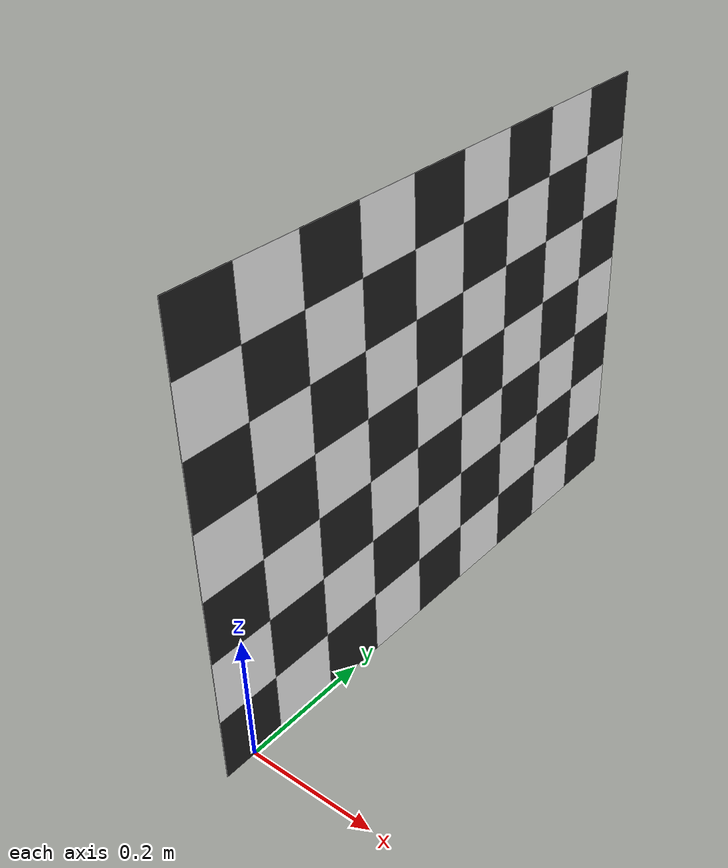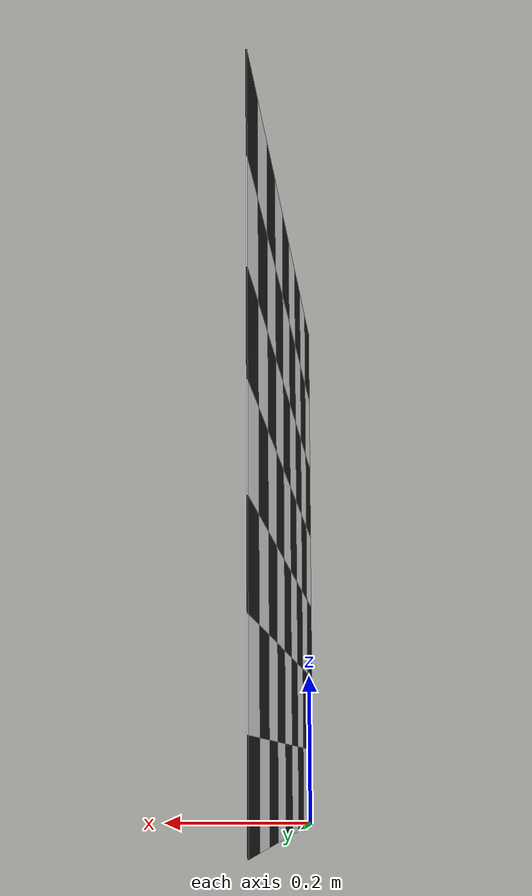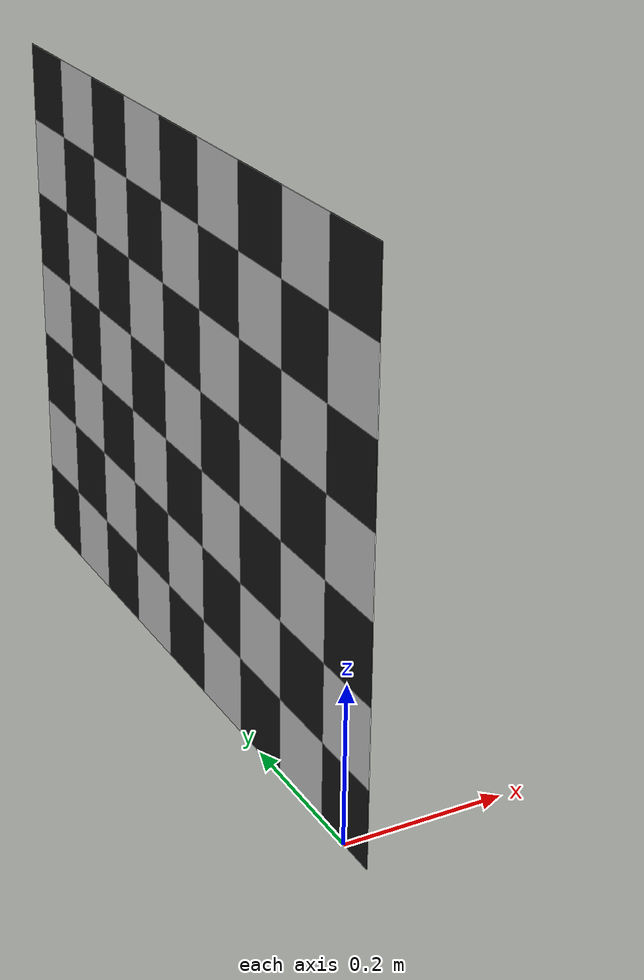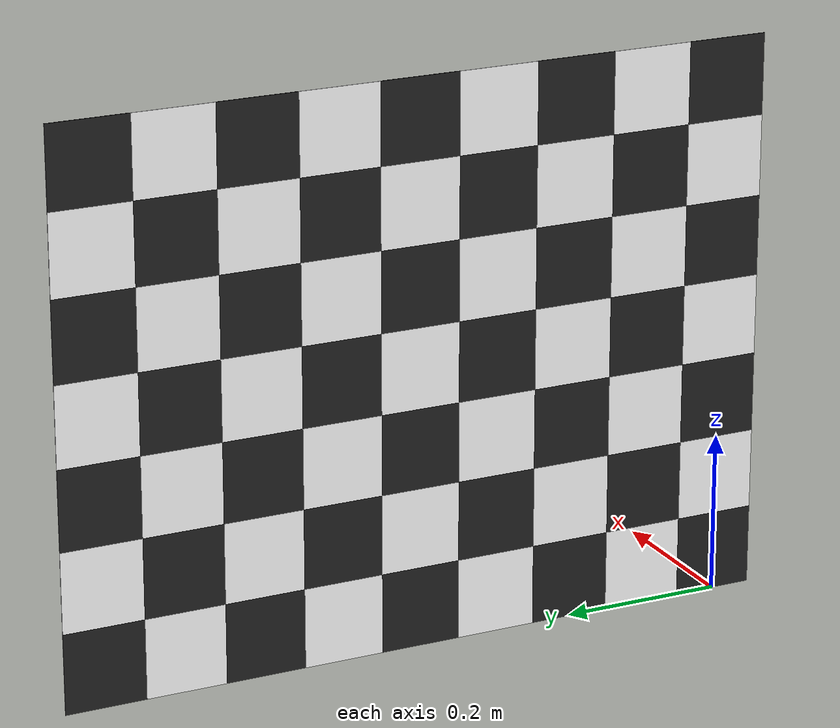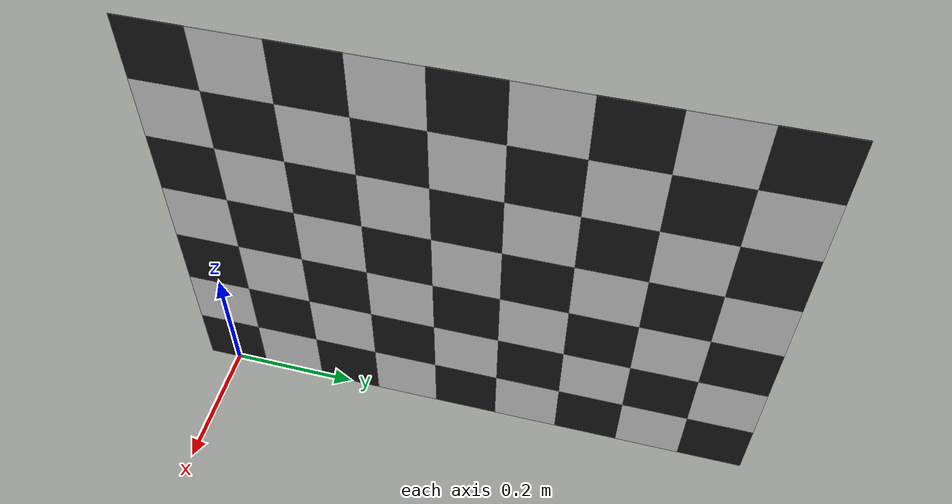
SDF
<sdf version='1.6'>
	<model name="callibration_pattern">
		<pose>0 0 0.05 0 0 0</pose>
		<link name="link_1">
			<kinematic>1</kinematic>
			<gravity>0</gravity>
			<inertial>
				<mass>0.001</mass>
			</inertial>
			<collision name="collision">
				<geometry>
					<box>
						<size>0.001 0.1 0.1</size>
					</box>
				</geometry>
			</collision>
			<visual name="visual">
				<geometry>
					<box>
						<size>0.001 0.1 0.1</size>
					</box>
				</geometry>
				<material>
					<script>
						<name>Gazebo/Black</name>
						<uri>file://media/materials/scripts/gazebo.material</uri>
					</script>
				</material>
			</visual>
		</link>

		<link name="link_2">
			<kinematic>1</kinematic>
			<gravity>0</gravity>
			<pose>0 0.1 0 0 0 0</pose>
			<inertial>
				<mass>0.001</mass>
			</inertial>
			<collision name="collision">
				<geometry>
					<box>
						<size>0.001 0.1 0.1</size>
					</box>
				</geometry>
			</collision>
			<visual name="visual">
				<geometry>
					<box>
						<size>0.001 0.1 0.1</size>
					</box>
				</geometry>
				<material>
					<script>
						<name>Gazebo/White</name>
						<uri>file://media/materials/scripts/gazebo.material</uri>
					</script>
				</material>
			</visual>
		</link>

		<link name="link_3">
			<kinematic>1</kinematic>
			<gravity>0</gravity>
			<pose>0 0.2 0 0 0 0</pose>
			<inertial>
				<mass>0.001</mass>
			</inertial>
			<collision name="collision">
				<geometry>
					<box>
						<size>0.001 0.1 0.1</size>
					</box>
				</geometry>
			</collision>
			<visual name="visual">
				<geometry>
					<box>
						<size>0.001 0.1 0.1</size>
					</box>
				</geometry>
				<material>
					<script>
						<name>Gazebo/Black</name>
						<uri>file://media/materials/scripts/gazebo.material</uri>
					</script>
				</material>
			</visual>
		</link>

		<link name="link_4">
			<kinematic>1</kinematic>
			<gravity>0</gravity>
			<pose>0 0.3 0 0 0 0</pose>
			<inertial>
				<mass>0.001</mass>
			</inertial>
			<collision name="collision">
				<geometry>
					<box>
						<size>0.001 0.1 0.1</size>
					</box>
				</geometry>
			</collision>
			<visual name="visual">
				<geometry>
					<box>
						<size>0.001 0.1 0.1</size>
					</box>
				</geometry>
				<material>
					<script>
						<name>Gazebo/White</name>
						<uri>file://media/materials/scripts/gazebo.material</uri>
					</script>
				</material>
			</visual>
		</link>

		<link name="link_5">
			<kinematic>1</kinematic>
			<gravity>0</gravity>
			<pose>0 0.4 0 0 0 0</pose>
			<inertial>
				<mass>0.001</mass>
			</inertial>
			<collision name="collision">
				<geometry>
					<box>
						<size>0.001 0.1 0.1</size>
					</box>
				</geometry>
			</collision>
			<visual name="visual">
				<geometry>
					<box>
						<size>0.001 0.1 0.1</size>
					</box>
				</geometry>
				<material>
					<script>
						<name>Gazebo/Black</name>
						<uri>file://media/materials/scripts/gazebo.material</uri>
					</script>
				</material>
			</visual>
		</link>

		<link name="link_6">
			<kinematic>1</kinematic>
			<gravity>0</gravity>
			<pose>0 0.5 0 0 0 0</pose>
			<inertial>
				<mass>0.001</mass>
			</inertial>
			<collision name="collision">
				<geometry>
					<box>
						<size>0.001 0.1 0.1</size>
					</box>
				</geometry>
			</collision>
			<visual name="visual">
				<geometry>
					<box>
						<size>0.001 0.1 0.1</size>
					</box>
				</geometry>
				<material>
					<script>
						<name>Gazebo/White</name>
						<uri>file://media/materials/scripts/gazebo.material</uri>
					</script>
				</material>
			</visual>
		</link>

		<link name="link_7">
			<kinematic>1</kinematic>
			<gravity>0</gravity>
			<pose>0 0.6 0 0 0 0</pose>
			<inertial>
				<mass>0.001</mass>
			</inertial>
			<collision name="collision">
				<geometry>
					<box>
						<size>0.001 0.1 0.1</size>
					</box>
				</geometry>
			</collision>
			<visual name="visual">
				<geometry>
					<box>
						<size>0.001 0.1 0.1</size>
					</box>
				</geometry>
				<material>
					<script>
						<name>Gazebo/Black</name>
						<uri>file://media/materials/scripts/gazebo.material</uri>
					</script>
				</material>
			</visual>
		</link>

		<link name="link_8">
			<kinematic>1</kinematic>
			<gravity>0</gravity>
			<pose>0 0.7 0 0 0 0</pose>
			<inertial>
				<mass>0.001</mass>
			</inertial>
			<collision name="collision">
				<geometry>
					<box>
						<size>0.001 0.1 0.1</size>
					</box>
				</geometry>
			</collision>
			<visual name="visual">
				<geometry>
					<box>
						<size>0.001 0.1 0.1</size>
					</box>
				</geometry>
				<material>
					<script>
						<name>Gazebo/White</name>
						<uri>file://media/materials/scripts/gazebo.material</uri>
					</script>
				</material>
			</visual>
		</link>

		<link name="link_9">
			<kinematic>1</kinematic>
			<gravity>0</gravity>
			<pose>0 0.8 0 0 0 0</pose>
			<inertial>
				<mass>0.001</mass>
			</inertial>
			<collision name="collision">
				<geometry>
					<box>
						<size>0.001 0.1 0.1</size>
					</box>
				</geometry>
			</collision>
			<visual name="visual">
				<geometry>
					<box>
						<size>0.001 0.1 0.1</size>
					</box>
				</geometry>
				<material>
					<script>
						<name>Gazebo/Black</name>
						<uri>file://media/materials/scripts/gazebo.material</uri>
					</script>
				</material>
			</visual>
		</link>

		<link name="link_10">
			<kinematic>1</kinematic>
			<gravity>0</gravity>
			<pose>0 0 0.1 0 0 0</pose>
			<inertial>
				<mass>0.001</mass>
			</inertial>
			<collision name="collision">
				<geometry>
					<box>
						<size>0.001 0.1 0.1</size>
					</box>
				</geometry>
			</collision>
			<visual name="visual">
				<geometry>
					<box>
						<size>0.001 0.1 0.1</size>
					</box>
				</geometry>
				<material>
					<script>
						<name>Gazebo/White</name>
						<uri>file://media/materials/scripts/gazebo.material</uri>
					</script>
				</material>
			</visual>
		</link>

		<link name="link_11">
			<kinematic>1</kinematic>
			<gravity>0</gravity>
			<pose>0 0.1 0.1 0 0 0</pose>
			<inertial>
				<mass>0.001</mass>
			</inertial>
			<collision name="collision">
				<geometry>
					<box>
						<size>0.001 0.1 0.1</size>
					</box>
				</geometry>
			</collision>
			<visual name="visual">
				<geometry>
					<box>
						<size>0.001 0.1 0.1</size>
					</box>
				</geometry>
				<material>
					<script>
						<name>Gazebo/Black</name>
						<uri>file://media/materials/scripts/gazebo.material</uri>
					</script>
				</material>
			</visual>
		</link>

		<link name="link_12">
			<kinematic>1</kinematic>
			<gravity>0</gravity>
			<pose>0 0.2 0.1 0 0 0</pose>
			<inertial>
				<mass>0.001</mass>
			</inertial>
			<collision name="collision">
				<geometry>
					<box>
						<size>0.001 0.1 0.1</size>
					</box>
				</geometry>
			</collision>
			<visual name="visual">
				<geometry>
					<box>
						<size>0.001 0.1 0.1</size>
					</box>
				</geometry>
				<material>
					<script>
						<name>Gazebo/White</name>
						<uri>file://media/materials/scripts/gazebo.material</uri>
					</script>
				</material>
			</visual>
		</link>

		<link name="link_13">
			<kinematic>1</kinematic>
			<gravity>0</gravity>
			<pose>0 0.3 0.1 0 0 0</pose>
			<inertial>
				<mass>0.001</mass>
			</inertial>
			<collision name="collision">
				<geometry>
					<box>
						<size>0.001 0.1 0.1</size>
					</box>
				</geometry>
			</collision>
			<visual name="visual">
				<geometry>
					<box>
						<size>0.001 0.1 0.1</size>
					</box>
				</geometry>
				<material>
					<script>
						<name>Gazebo/Black</name>
						<uri>file://media/materials/scripts/gazebo.material</uri>
					</script>
				</material>
			</visual>
		</link>

		<link name="link_14">
			<kinematic>1</kinematic>
			<gravity>0</gravity>
			<pose>0 0.4 0.1 0 0 0</pose>
			<inertial>
				<mass>0.001</mass>
			</inertial>
			<collision name="collision">
				<geometry>
					<box>
						<size>0.001 0.1 0.1</size>
					</box>
				</geometry>
			</collision>
			<visual name="visual">
				<geometry>
					<box>
						<size>0.001 0.1 0.1</size>
					</box>
				</geometry>
				<material>
					<script>
						<name>Gazebo/White</name>
						<uri>file://media/materials/scripts/gazebo.material</uri>
					</script>
				</material>
			</visual>
		</link>

		<link name="link_15">
			<kinematic>1</kinematic>
			<gravity>0</gravity>
			<pose>0 0.5 0.1 0 0 0</pose>
			<inertial>
				<mass>0.001</mass>
			</inertial>
			<collision name="collision">
				<geometry>
					<box>
						<size>0.001 0.1 0.1</size>
					</box>
				</geometry>
			</collision>
			<visual name="visual">
				<geometry>
					<box>
						<size>0.001 0.1 0.1</size>
					</box>
				</geometry>
				<material>
					<script>
						<name>Gazebo/Black</name>
						<uri>file://media/materials/scripts/gazebo.material</uri>
					</script>
				</material>
			</visual>
		</link>

		<link name="link_16">
			<kinematic>1</kinematic>
			<gravity>0</gravity>
			<pose>0 0.6 0.1 0 0 0</pose>
			<inertial>
				<mass>0.001</mass>
			</inertial>
			<collision name="collision">
				<geometry>
					<box>
						<size>0.001 0.1 0.1</size>
					</box>
				</geometry>
			</collision>
			<visual name="visual">
				<geometry>
					<box>
						<size>0.001 0.1 0.1</size>
					</box>
				</geometry>
				<material>
					<script>
						<name>Gazebo/White</name>
						<uri>file://media/materials/scripts/gazebo.material</uri>
					</script>
				</material>
			</visual>
		</link>

		<link name="link_17">
			<kinematic>1</kinematic>
			<gravity>0</gravity>
			<pose>0 0.7 0.1 0 0 0</pose>
			<inertial>
				<mass>0.001</mass>
			</inertial>
			<collision name="collision">
				<geometry>
					<box>
						<size>0.001 0.1 0.1</size>
					</box>
				</geometry>
			</collision>
			<visual name="visual">
				<geometry>
					<box>
						<size>0.001 0.1 0.1</size>
					</box>
				</geometry>
				<material>
					<script>
						<name>Gazebo/Black</name>
						<uri>file://media/materials/scripts/gazebo.material</uri>
					</script>
				</material>
			</visual>
		</link>

		<link name="link_18">
			<kinematic>1</kinematic>
			<gravity>0</gravity>
			<pose>0 0.8 0.1 0 0 0</pose>
			<inertial>
				<mass>0.001</mass>
			</inertial>
			<collision name="collision">
				<geometry>
					<box>
						<size>0.001 0.1 0.1</size>
					</box>
				</geometry>
			</collision>
			<visual name="visual">
				<geometry>
					<box>
						<size>0.001 0.1 0.1</size>
					</box>
				</geometry>
				<material>
					<script>
						<name>Gazebo/White</name>
						<uri>file://media/materials/scripts/gazebo.material</uri>
					</script>
				</material>
			</visual>
		</link>

		<link name="link_20">
			<kinematic>1</kinematic>
			<gravity>0</gravity>
			<pose>0 0 0.2 0 0 0</pose>
			<inertial>
				<mass>0.001</mass>
			</inertial>
			<collision name="collision">
				<geometry>
					<box>
						<size>0.001 0.1 0.1</size>
					</box>
				</geometry>
			</collision>
			<visual name="visual">
				<geometry>
					<box>
						<size>0.001 0.1 0.1</size>
					</box>
				</geometry>
				<material>
					<script>
						<name>Gazebo/Black</name>
						<uri>file://media/materials/scripts/gazebo.material</uri>
					</script>
				</material>
			</visual>
		</link>

		<link name="link_21">
			<kinematic>1</kinematic>
			<gravity>0</gravity>
			<pose>0 0.1 0.2 0 0 0</pose>
			<inertial>
				<mass>0.001</mass>
			</inertial>
			<collision name="collision">
				<geometry>
					<box>
						<size>0.001 0.1 0.1</size>
					</box>
				</geometry>
			</collision>
			<visual name="visual">
				<geometry>
					<box>
						<size>0.001 0.1 0.1</size>
					</box>
				</geometry>
				<material>
					<script>
						<name>Gazebo/White</name>
						<uri>file://media/materials/scripts/gazebo.material</uri>
					</script>
				</material>
			</visual>
		</link>

		<link name="link_22">
			<kinematic>1</kinematic>
			<gravity>0</gravity>
			<pose>0 0.2 0.2 0 0 0</pose>
			<inertial>
				<mass>0.001</mass>
			</inertial>
			<collision name="collision">
				<geometry>
					<box>
						<size>0.001 0.1 0.1</size>
					</box>
				</geometry>
			</collision>
			<visual name="visual">
				<geometry>
					<box>
						<size>0.001 0.1 0.1</size>
					</box>
				</geometry>
				<material>
					<script>
						<name>Gazebo/Black</name>
						<uri>file://media/materials/scripts/gazebo.material</uri>
					</script>
				</material>
			</visual>
		</link>

		<link name="link_23">
			<kinematic>1</kinematic>
			<gravity>0</gravity>
			<pose>0 0.3 0.2 0 0 0</pose>
			<inertial>
				<mass>0.001</mass>
			</inertial>
			<collision name="collision">
				<geometry>
					<box>
						<size>0.001 0.1 0.1</size>
					</box>
				</geometry>
			</collision>
			<visual name="visual">
				<geometry>
					<box>
						<size>0.001 0.1 0.1</size>
					</box>
				</geometry>
				<material>
					<script>
						<name>Gazebo/White</name>
						<uri>file://media/materials/scripts/gazebo.material</uri>
					</script>
				</material>
			</visual>
		</link>

		<link name="link_24">
			<kinematic>1</kinematic>
			<gravity>0</gravity>
			<pose>0 0.4 0.2 0 0 0</pose>
			<inertial>
				<mass>0.001</mass>
			</inertial>
			<collision name="collision">
				<geometry>
					<box>
						<size>0.001 0.1 0.1</size>
					</box>
				</geometry>
			</collision>
			<visual name="visual">
				<geometry>
					<box>
						<size>0.001 0.1 0.1</size>
					</box>
				</geometry>
				<material>
					<script>
						<name>Gazebo/Black</name>
						<uri>file://media/materials/scripts/gazebo.material</uri>
					</script>
				</material>
			</visual>
		</link>

		<link name="link_25">
			<kinematic>1</kinematic>
			<gravity>0</gravity>
			<pose>0 0.5 0.2 0 0 0</pose>
			<inertial>
				<mass>0.001</mass>
			</inertial>
			<collision name="collision">
				<geometry>
					<box>
						<size>0.001 0.1 0.1</size>
					</box>
				</geometry>
			</collision>
			<visual name="visual">
				<geometry>
					<box>
						<size>0.001 0.1 0.1</size>
					</box>
				</geometry>
				<material>
					<script>
						<name>Gazebo/White</name>
						<uri>file://media/materials/scripts/gazebo.material</uri>
					</script>
				</material>
			</visual>
		</link>

		<link name="link_26">
			<kinematic>1</kinematic>
			<gravity>0</gravity>
			<pose>0 0.6 0.2 0 0 0</pose>
			<inertial>
				<mass>0.001</mass>
			</inertial>
			<collision name="collision">
				<geometry>
					<box>
						<size>0.001 0.1 0.1</size>
					</box>
				</geometry>
			</collision>
			<visual name="visual">
				<geometry>
					<box>
						<size>0.001 0.1 0.1</size>
					</box>
				</geometry>
				<material>
					<script>
						<name>Gazebo/Black</name>
						<uri>file://media/materials/scripts/gazebo.material</uri>
					</script>
				</material>
			</visual>
		</link>

		<link name="link_27">
			<kinematic>1</kinematic>
			<gravity>0</gravity>
			<pose>0 0.7 0.2 0 0 0</pose>
			<inertial>
				<mass>0.001</mass>
			</inertial>
			<collision name="collision">
				<geometry>
					<box>
						<size>0.001 0.1 0.1</size>
					</box>
				</geometry>
			</collision>
			<visual name="visual">
				<geometry>
					<box>
						<size>0.001 0.1 0.1</size>
					</box>
				</geometry>
				<material>
					<script>
						<name>Gazebo/White</name>
						<uri>file://media/materials/scripts/gazebo.material</uri>
					</script>
				</material>
			</visual>
		</link>

		<link name="link_28">
			<kinematic>1</kinematic>
			<gravity>0</gravity>
			<pose>0 0.8 0.2 0 0 0</pose>
			<inertial>
				<mass>0.001</mass>
			</inertial>
			<collision name="collision">
				<geometry>
					<box>
						<size>0.001 0.1 0.1</size>
					</box>
				</geometry>
			</collision>
			<visual name="visual">
				<geometry>
					<box>
						<size>0.001 0.1 0.1</size>
					</box>
				</geometry>
				<material>
					<script>
						<name>Gazebo/Black</name>
						<uri>file://media/materials/scripts/gazebo.material</uri>
					</script>
				</material>
			</visual>
		</link>

		<link name="link_30">
			<kinematic>1</kinematic>
			<gravity>0</gravity>
			<pose>0 0 0.3 0 0 0</pose>
			<inertial>
				<mass>0.001</mass>
			</inertial>
			<collision name="collision">
				<geometry>
					<box>
						<size>0.001 0.1 0.1</size>
					</box>
				</geometry>
			</collision>
			<visual name="visual">
				<geometry>
					<box>
						<size>0.001 0.1 0.1</size>
					</box>
				</geometry>
				<material>
					<script>
						<name>Gazebo/White</name>
						<uri>file://media/materials/scripts/gazebo.material</uri>
					</script>
				</material>
			</visual>
		</link>

		<link name="link_31">
			<kinematic>1</kinematic>
			<gravity>0</gravity>
			<pose>0 0.1 0.3 0 0 0</pose>
			<inertial>
				<mass>0.001</mass>
			</inertial>
			<collision name="collision">
				<geometry>
					<box>
						<size>0.001 0.1 0.1</size>
					</box>
				</geometry>
			</collision>
			<visual name="visual">
				<geometry>
					<box>
						<size>0.001 0.1 0.1</size>
					</box>
				</geometry>
				<material>
					<script>
						<name>Gazebo/Black</name>
						<uri>file://media/materials/scripts/gazebo.material</uri>
					</script>
				</material>
			</visual>
		</link>

		<link name="link_32">
			<kinematic>1</kinematic>
			<gravity>0</gravity>
			<pose>0 0.2 0.3 0 0 0</pose>
			<inertial>
				<mass>0.001</mass>
			</inertial>
			<collision name="collision">
				<geometry>
					<box>
						<size>0.001 0.1 0.1</size>
					</box>
				</geometry>
			</collision>
			<visual name="visual">
				<geometry>
					<box>
						<size>0.001 0.1 0.1</size>
					</box>
				</geometry>
				<material>
					<script>
						<name>Gazebo/White</name>
						<uri>file://media/materials/scripts/gazebo.material</uri>
					</script>
				</material>
			</visual>
		</link>

		<link name="link_33">
			<kinematic>1</kinematic>
			<gravity>0</gravity>
			<pose>0 0.3 0.3 0 0 0</pose>
			<inertial>
				<mass>0.001</mass>
			</inertial>
			<collision name="collision">
				<geometry>
					<box>
						<size>0.001 0.1 0.1</size>
					</box>
				</geometry>
			</collision>
			<visual name="visual">
				<geometry>
					<box>
						<size>0.001 0.1 0.1</size>
					</box>
				</geometry>
				<material>
					<script>
						<name>Gazebo/Black</name>
						<uri>file://media/materials/scripts/gazebo.material</uri>
					</script>
				</material>
			</visual>
		</link>

		<link name="link_34">
			<kinematic>1</kinematic>
			<gravity>0</gravity>
			<pose>0 0.4 0.3 0 0 0</pose>
			<inertial>
				<mass>0.001</mass>
			</inertial>
			<collision name="collision">
				<geometry>
					<box>
						<size>0.001 0.1 0.1</size>
					</box>
				</geometry>
			</collision>
			<visual name="visual">
				<geometry>
					<box>
						<size>0.001 0.1 0.1</size>
					</box>
				</geometry>
				<material>
					<script>
						<name>Gazebo/White</name>
						<uri>file://media/materials/scripts/gazebo.material</uri>
					</script>
				</material>
			</visual>
		</link>

		<link name="link_35">
			<kinematic>1</kinematic>
			<gravity>0</gravity>
			<pose>0 0.5 0.3 0 0 0</pose>
			<inertial>
				<mass>0.001</mass>
			</inertial>
			<collision name="collision">
				<geometry>
					<box>
						<size>0.001 0.1 0.1</size>
					</box>
				</geometry>
			</collision>
			<visual name="visual">
				<geometry>
					<box>
						<size>0.001 0.1 0.1</size>
					</box>
				</geometry>
				<material>
					<script>
						<name>Gazebo/Black</name>
						<uri>file://media/materials/scripts/gazebo.material</uri>
					</script>
				</material>
			</visual>
		</link>

		<link name="link_36">
			<kinematic>1</kinematic>
			<gravity>0</gravity>
			<pose>0 0.6 0.3 0 0 0</pose>
			<inertial>
				<mass>0.001</mass>
			</inertial>
			<collision name="collision">
				<geometry>
					<box>
						<size>0.001 0.1 0.1</size>
					</box>
				</geometry>
			</collision>
			<visual name="visual">
				<geometry>
					<box>
						<size>0.001 0.1 0.1</size>
					</box>
				</geometry>
				<material>
					<script>
						<name>Gazebo/White</name>
						<uri>file://media/materials/scripts/gazebo.material</uri>
					</script>
				</material>
			</visual>
		</link>

		<link name="link_37">
			<kinematic>1</kinematic>
			<gravity>0</gravity>
			<pose>0 0.7 0.3 0 0 0</pose>
			<inertial>
				<mass>0.001</mass>
			</inertial>
			<collision name="collision">
				<geometry>
					<box>
						<size>0.001 0.1 0.1</size>
					</box>
				</geometry>
			</collision>
			<visual name="visual">
				<geometry>
					<box>
						<size>0.001 0.1 0.1</size>
					</box>
				</geometry>
				<material>
					<script>
						<name>Gazebo/Black</name>
						<uri>file://media/materials/scripts/gazebo.material</uri>
					</script>
				</material>
			</visual>
		</link>

		<link name="link_38">
			<kinematic>1</kinematic>
			<gravity>0</gravity>
			<pose>0 0.8 0.3 0 0 0</pose>
			<inertial>
				<mass>0.001</mass>
			</inertial>
			<collision name="collision">
				<geometry>
					<box>
						<size>0.001 0.1 0.1</size>
					</box>
				</geometry>
			</collision>
			<visual name="visual">
				<geometry>
					<box>
						<size>0.001 0.1 0.1</size>
					</box>
				</geometry>
				<material>
					<script>
						<name>Gazebo/White</name>
						<uri>file://media/materials/scripts/gazebo.material</uri>
					</script>
				</material>
			</visual>
		</link>

		<link name="link_40">
			<kinematic>1</kinematic>
			<gravity>0</gravity>
			<pose>0 0 0.4 0 0 0</pose>
			<inertial>
				<mass>0.001</mass>
			</inertial>
			<collision name="collision">
				<geometry>
					<box>
						<size>0.001 0.1 0.1</size>
					</box>
				</geometry>
			</collision>
			<visual name="visual">
				<geometry>
					<box>
						<size>0.001 0.1 0.1</size>
					</box>
				</geometry>
				<material>
					<script>
						<name>Gazebo/Black</name>
						<uri>file://media/materials/scripts/gazebo.material</uri>
					</script>
				</material>
			</visual>
		</link>

		<link name="link_41">
			<kinematic>1</kinematic>
			<gravity>0</gravity>
			<pose>0 0.1 0.4 0 0 0</pose>
			<inertial>
				<mass>0.001</mass>
			</inertial>
			<collision name="collision">
				<geometry>
					<box>
						<size>0.001 0.1 0.1</size>
					</box>
				</geometry>
			</collision>
			<visual name="visual">
				<geometry>
					<box>
						<size>0.001 0.1 0.1</size>
					</box>
				</geometry>
				<material>
					<script>
						<name>Gazebo/White</name>
						<uri>file://media/materials/scripts/gazebo.material</uri>
					</script>
				</material>
			</visual>
		</link>

		<link name="link_42">
			<kinematic>1</kinematic>
			<gravity>0</gravity>
			<pose>0 0.2 0.4 0 0 0</pose>
			<inertial>
				<mass>0.001</mass>
			</inertial>
			<collision name="collision">
				<geometry>
					<box>
						<size>0.001 0.1 0.1</size>
					</box>
				</geometry>
			</collision>
			<visual name="visual">
				<geometry>
					<box>
						<size>0.001 0.1 0.1</size>
					</box>
				</geometry>
				<material>
					<script>
						<name>Gazebo/Black</name>
						<uri>file://media/materials/scripts/gazebo.material</uri>
					</script>
				</material>
			</visual>
		</link>

		<link name="link_43">
			<kinematic>1</kinematic>
			<gravity>0</gravity>
			<pose>0 0.3 0.4 0 0 0</pose>
			<inertial>
				<mass>0.001</mass>
			</inertial>
			<collision name="collision">
				<geometry>
					<box>
						<size>0.001 0.1 0.1</size>
					</box>
				</geometry>
			</collision>
			<visual name="visual">
				<geometry>
					<box>
						<size>0.001 0.1 0.1</size>
					</box>
				</geometry>
				<material>
					<script>
						<name>Gazebo/White</name>
						<uri>file://media/materials/scripts/gazebo.material</uri>
					</script>
				</material>
			</visual>
		</link>

		<link name="link_44">
			<kinematic>1</kinematic>
			<gravity>0</gravity>
			<pose>0 0.4 0.4 0 0 0</pose>
			<inertial>
				<mass>0.001</mass>
			</inertial>
			<collision name="collision">
				<geometry>
					<box>
						<size>0.001 0.1 0.1</size>
					</box>
				</geometry>
			</collision>
			<visual name="visual">
				<geometry>
					<box>
						<size>0.001 0.1 0.1</size>
					</box>
				</geometry>
				<material>
					<script>
						<name>Gazebo/Black</name>
						<uri>file://media/materials/scripts/gazebo.material</uri>
					</script>
				</material>
			</visual>
		</link>

		<link name="link_45">
			<kinematic>1</kinematic>
			<gravity>0</gravity>
			<pose>0 0.5 0.4 0 0 0</pose>
			<inertial>
				<mass>0.001</mass>
			</inertial>
			<collision name="collision">
				<geometry>
					<box>
						<size>0.001 0.1 0.1</size>
					</box>
				</geometry>
			</collision>
			<visual name="visual">
				<geometry>
					<box>
						<size>0.001 0.1 0.1</size>
					</box>
				</geometry>
				<material>
					<script>
						<name>Gazebo/White</name>
						<uri>file://media/materials/scripts/gazebo.material</uri>
					</script>
				</material>
			</visual>
		</link>

		<link name="link_46">
			<kinematic>1</kinematic>
			<gravity>0</gravity>
			<pose>0 0.6 0.4 0 0 0</pose>
			<inertial>
				<mass>0.001</mass>
			</inertial>
			<collision name="collision">
				<geometry>
					<box>
						<size>0.001 0.1 0.1</size>
					</box>
				</geometry>
			</collision>
			<visual name="visual">
				<geometry>
					<box>
						<size>0.001 0.1 0.1</size>
					</box>
				</geometry>
				<material>
					<script>
						<name>Gazebo/Black</name>
						<uri>file://media/materials/scripts/gazebo.material</uri>
					</script>
				</material>
			</visual>
		</link>

		<link name="link_47">
			<kinematic>1</kinematic>
			<gravity>0</gravity>
			<pose>0 0.7 0.4 0 0 0</pose>
			<inertial>
				<mass>0.001</mass>
			</inertial>
			<collision name="collision">
				<geometry>
					<box>
						<size>0.001 0.1 0.1</size>
					</box>
				</geometry>
			</collision>
			<visual name="visual">
				<geometry>
					<box>
						<size>0.001 0.1 0.1</size>
					</box>
				</geometry>
				<material>
					<script>
						<name>Gazebo/White</name>
						<uri>file://media/materials/scripts/gazebo.material</uri>
					</script>
				</material>
			</visual>
		</link>

		<link name="link_48">
			<kinematic>1</kinematic>
			<gravity>0</gravity>
			<pose>0 0.8 0.4 0 0 0</pose>
			<inertial>
				<mass>0.001</mass>
			</inertial>
			<collision name="collision">
				<geometry>
					<box>
						<size>0.001 0.1 0.1</size>
					</box>
				</geometry>
			</collision>
			<visual name="visual">
				<geometry>
					<box>
						<size>0.001 0.1 0.1</size>
					</box>
				</geometry>
				<material>
					<script>
						<name>Gazebo/Black</name>
						<uri>file://media/materials/scripts/gazebo.material</uri>
					</script>
				</material>
			</visual>
		</link>

		<link name="link_50">
			<kinematic>1</kinematic>
			<gravity>0</gravity>
			<pose>0 0 0.5 0 0 0</pose>
			<inertial>
				<mass>0.001</mass>
			</inertial>
			<collision name="collision">
				<geometry>
					<box>
						<size>0.001 0.1 0.1</size>
					</box>
				</geometry>
			</collision>
			<visual name="visual">
				<geometry>
					<box>
						<size>0.001 0.1 0.1</size>
					</box>
				</geometry>
				<material>
					<script>
						<name>Gazebo/White</name>
						<uri>file://media/materials/scripts/gazebo.material</uri>
					</script>
				</material>
			</visual>
		</link>

		<link name="link_51">
			<kinematic>1</kinematic>
			<gravity>0</gravity>
			<pose>0 0.1 0.5 0 0 0</pose>
			<inertial>
				<mass>0.001</mass>
			</inertial>
			<collision name="collision">
				<geometry>
					<box>
						<size>0.001 0.1 0.1</size>
					</box>
				</geometry>
			</collision>
			<visual name="visual">
				<geometry>
					<box>
						<size>0.001 0.1 0.1</size>
					</box>
				</geometry>
				<material>
					<script>
						<name>Gazebo/Black</name>
						<uri>file://media/materials/scripts/gazebo.material</uri>
					</script>
				</material>
			</visual>
		</link>

		<link name="link_52">
			<kinematic>1</kinematic>
			<gravity>0</gravity>
			<pose>0 0.2 0.5 0 0 0</pose>
			<inertial>
				<mass>0.001</mass>
			</inertial>
			<collision name="collision">
				<geometry>
					<box>
						<size>0.001 0.1 0.1</size>
					</box>
				</geometry>
			</collision>
			<visual name="visual">
				<geometry>
					<box>
						<size>0.001 0.1 0.1</size>
					</box>
				</geometry>
				<material>
					<script>
						<name>Gazebo/White</name>
						<uri>file://media/materials/scripts/gazebo.material</uri>
					</script>
				</material>
			</visual>
		</link>

		<link name="link_53">
			<kinematic>1</kinematic>
			<gravity>0</gravity>
			<pose>0 0.3 0.5 0 0 0</pose>
			<inertial>
				<mass>0.001</mass>
			</inertial>
			<collision name="collision">
				<geometry>
					<box>
						<size>0.001 0.1 0.1</size>
					</box>
				</geometry>
			</collision>
			<visual name="visual">
				<geometry>
					<box>
						<size>0.001 0.1 0.1</size>
					</box>
				</geometry>
				<material>
					<script>
						<name>Gazebo/Black</name>
						<uri>file://media/materials/scripts/gazebo.material</uri>
					</script>
				</material>
			</visual>
		</link>

		<link name="link_54">
			<kinematic>1</kinematic>
			<gravity>0</gravity>
			<pose>0 0.4 0.5 0 0 0</pose>
			<inertial>
				<mass>0.001</mass>
			</inertial>
			<collision name="collision">
				<geometry>
					<box>
						<size>0.001 0.1 0.1</size>
					</box>
				</geometry>
			</collision>
			<visual name="visual">
				<geometry>
					<box>
						<size>0.001 0.1 0.1</size>
					</box>
				</geometry>
				<material>
					<script>
						<name>Gazebo/White</name>
						<uri>file://media/materials/scripts/gazebo.material</uri>
					</script>
				</material>
			</visual>
		</link>

		<link name="link_55">
			<kinematic>1</kinematic>
			<gravity>0</gravity>
			<pose>0 0.5 0.5 0 0 0</pose>
			<inertial>
				<mass>0.001</mass>
			</inertial>
			<collision name="collision">
				<geometry>
					<box>
						<size>0.001 0.1 0.1</size>
					</box>
				</geometry>
			</collision>
			<visual name="visual">
				<geometry>
					<box>
						<size>0.001 0.1 0.1</size>
					</box>
				</geometry>
				<material>
					<script>
						<name>Gazebo/Black</name>
						<uri>file://media/materials/scripts/gazebo.material</uri>
					</script>
				</material>
			</visual>
		</link>

		<link name="link_56">
			<kinematic>1</kinematic>
			<gravity>0</gravity>
			<pose>0 0.6 0.5 0 0 0</pose>
			<inertial>
				<mass>0.001</mass>
			</inertial>
			<collision name="collision">
				<geometry>
					<box>
						<size>0.001 0.1 0.1</size>
					</box>
				</geometry>
			</collision>
			<visual name="visual">
				<geometry>
					<box>
						<size>0.001 0.1 0.1</size>
					</box>
				</geometry>
				<material>
					<script>
						<name>Gazebo/White</name>
						<uri>file://media/materials/scripts/gazebo.material</uri>
					</script>
				</material>
			</visual>
		</link>

		<link name="link_57">
			<kinematic>1</kinematic>
			<gravity>0</gravity>
			<pose>0 0.7 0.5 0 0 0</pose>
			<inertial>
				<mass>0.001</mass>
			</inertial>
			<collision name="collision">
				<geometry>
					<box>
						<size>0.001 0.1 0.1</size>
					</box>
				</geometry>
			</collision>
			<visual name="visual">
				<geometry>
					<box>
						<size>0.001 0.1 0.1</size>
					</box>
				</geometry>
				<material>
					<script>
						<name>Gazebo/Black</name>
						<uri>file://media/materials/scripts/gazebo.material</uri>
					</script>
				</material>
			</visual>
		</link>

		<link name="link_58">
			<kinematic>1</kinematic>
			<gravity>0</gravity>
			<pose>0 0.8 0.5 0 0 0</pose>
			<inertial>
				<mass>0.001</mass>
			</inertial>
			<collision name="collision">
				<geometry>
					<box>
						<size>0.001 0.1 0.1</size>
					</box>
				</geometry>
			</collision>
			<visual name="visual">
				<geometry>
					<box>
						<size>0.001 0.1 0.1</size>
					</box>
				</geometry>
				<material>
					<script>
						<name>Gazebo/White</name>
						<uri>file://media/materials/scripts/gazebo.material</uri>
					</script>
				</material>
			</visual>
		</link>

		<link name="link_60">
			<kinematic>1</kinematic>
			<gravity>0</gravity>
			<pose>0 0 0.6 0 0 0</pose>
			<inertial>
				<mass>0.001</mass>
			</inertial>
			<collision name="collision">
				<geometry>
					<box>
						<size>0.001 0.1 0.1</size>
					</box>
				</geometry>
			</collision>
			<visual name="visual">
				<geometry>
					<box>
						<size>0.001 0.1 0.1</size>
					</box>
				</geometry>
				<material>
					<script>
						<name>Gazebo/Black</name>
						<uri>file://media/materials/scripts/gazebo.material</uri>
					</script>
				</material>
			</visual>
		</link>

		<link name="link_61">
			<kinematic>1</kinematic>
			<gravity>0</gravity>
			<pose>0 0.1 0.6 0 0 0</pose>
			<inertial>
				<mass>0.001</mass>
			</inertial>
			<collision name="collision">
				<geometry>
					<box>
						<size>0.001 0.1 0.1</size>
					</box>
				</geometry>
			</collision>
			<visual name="visual">
				<geometry>
					<box>
						<size>0.001 0.1 0.1</size>
					</box>
				</geometry>
				<material>
					<script>
						<name>Gazebo/White</name>
						<uri>file://media/materials/scripts/gazebo.material</uri>
					</script>
				</material>
			</visual>
		</link>

		<link name="link_62">
			<kinematic>1</kinematic>
			<gravity>0</gravity>
			<pose>0 0.2 0.6 0 0 0</pose>
			<inertial>
				<mass>0.001</mass>
			</inertial>
			<collision name="collision">
				<geometry>
					<box>
						<size>0.001 0.1 0.1</size>
					</box>
				</geometry>
			</collision>
			<visual name="visual">
				<geometry>
					<box>
						<size>0.001 0.1 0.1</size>
					</box>
				</geometry>
				<material>
					<script>
						<name>Gazebo/Black</name>
						<uri>file://media/materials/scripts/gazebo.material</uri>
					</script>
				</material>
			</visual>
		</link>

		<link name="link_63">
			<kinematic>1</kinematic>
			<gravity>0</gravity>
			<pose>0 0.3 0.6 0 0 0</pose>
			<inertial>
				<mass>0.001</mass>
			</inertial>
			<collision name="collision">
				<geometry>
					<box>
						<size>0.001 0.1 0.1</size>
					</box>
				</geometry>
			</collision>
			<visual name="visual">
				<geometry>
					<box>
						<size>0.001 0.1 0.1</size>
					</box>
				</geometry>
				<material>
					<script>
						<name>Gazebo/White</name>
						<uri>file://media/materials/scripts/gazebo.material</uri>
					</script>
				</material>
			</visual>
		</link>

		<link name="link_64">
			<kinematic>1</kinematic>
			<gravity>0</gravity>
			<pose>0 0.4 0.6 0 0 0</pose>
			<inertial>
				<mass>0.001</mass>
			</inertial>
			<collision name="collision">
				<geometry>
					<box>
						<size>0.001 0.1 0.1</size>
					</box>
				</geometry>
			</collision>
			<visual name="visual">
				<geometry>
					<box>
						<size>0.001 0.1 0.1</size>
					</box>
				</geometry>
				<material>
					<script>
						<name>Gazebo/Black</name>
						<uri>file://media/materials/scripts/gazebo.material</uri>
					</script>
				</material>
			</visual>
		</link>

		<link name="link_65">
			<kinematic>1</kinematic>
			<gravity>0</gravity>
			<pose>0 0.5 0.6 0 0 0</pose>
			<inertial>
				<mass>0.001</mass>
			</inertial>
			<collision name="collision">
				<geometry>
					<box>
						<size>0.001 0.1 0.1</size>
					</box>
				</geometry>
			</collision>
			<visual name="visual">
				<geometry>
					<box>
						<size>0.001 0.1 0.1</size>
					</box>
				</geometry>
				<material>
					<script>
						<name>Gazebo/White</name>
						<uri>file://media/materials/scripts/gazebo.material</uri>
					</script>
				</material>
			</visual>
		</link>

		<link name="link_66">
			<kinematic>1</kinematic>
			<gravity>0</gravity>
			<pose>0 0.6 0.6 0 0 0</pose>
			<inertial>
				<mass>0.001</mass>
			</inertial>
			<collision name="collision">
				<geometry>
					<box>
						<size>0.001 0.1 0.1</size>
					</box>
				</geometry>
			</collision>
			<visual name="visual">
				<geometry>
					<box>
						<size>0.001 0.1 0.1</size>
					</box>
				</geometry>
				<material>
					<script>
						<name>Gazebo/Black</name>
						<uri>file://media/materials/scripts/gazebo.material</uri>
					</script>
				</material>
			</visual>
		</link>

		<link name="link_67">
			<kinematic>1</kinematic>
			<gravity>0</gravity>
			<pose>0 0.7 0.6 0 0 0</pose>
			<inertial>
				<mass>0.001</mass>
			</inertial>
			<collision name="collision">
				<geometry>
					<box>
						<size>0.001 0.1 0.1</size>
					</box>
				</geometry>
			</collision>
			<visual name="visual">
				<geometry>
					<box>
						<size>0.001 0.1 0.1</size>
					</box>
				</geometry>
				<material>
					<script>
						<name>Gazebo/White</name>
						<uri>file://media/materials/scripts/gazebo.material</uri>
					</script>
				</material>
			</visual>
		</link>

		<link name="link_68">
			<kinematic>1</kinematic>
			<gravity>0</gravity>
			<pose>0 0.8 0.6 0 0 0</pose>
			<inertial>
				<mass>0.001</mass>
			</inertial>
			<collision name="collision">
				<geometry>
					<box>
						<size>0.001 0.1 0.1</size>
					</box>
				</geometry>
			</collision>
			<visual name="visual">
				<geometry>
					<box>
						<size>0.001 0.1 0.1</size>
					</box>
				</geometry>
				<material>
					<script>
						<name>Gazebo/Black</name>
						<uri>file://media/materials/scripts/gazebo.material</uri>
					</script>
				</material>
			</visual>
		</link>
	</model>
</sdf>
